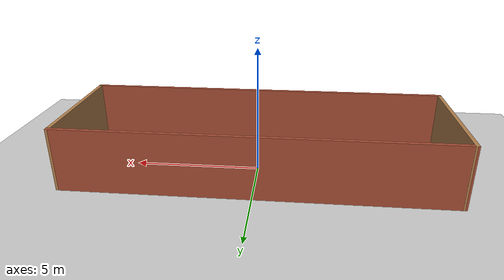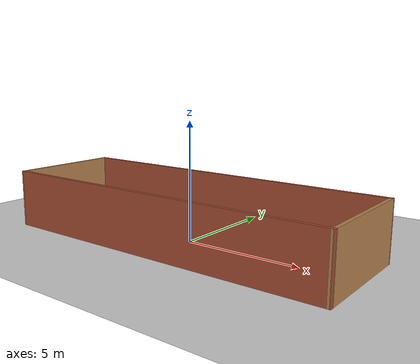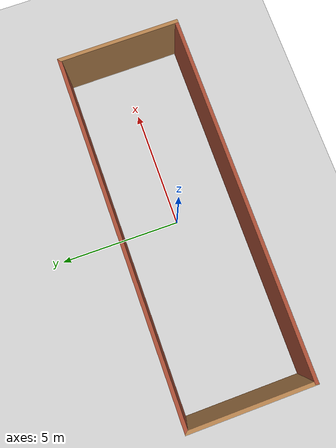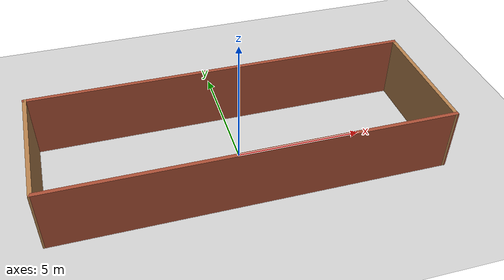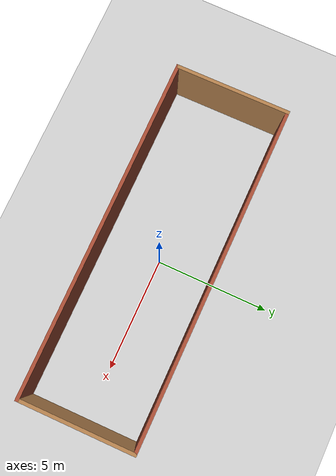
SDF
<sdf version="1.6">
 <world name="default">
  <model name="ground_plane">
   <static>1</static>
   <link name="link">
    <collision name="collision">
     <geometry><plane><normal>0 0 1</normal><size>100 100</size></plane></geometry>
     <surface>
      <contact><collide_bitmask>65535</collide_bitmask></contact>
      <friction><ode><mu>100</mu><mu2>50</mu2></ode></friction>
     </surface>
    </collision>
    <visual name="visual">
     <cast_shadows>0</cast_shadows>
     <geometry><plane><normal>0 0 1</normal><size>100 100</size></plane></geometry>
     <material>
      <script><uri>file://media/materials/scripts/gazebo.material</uri><name>Gazebo/Grey</name></script>
     </material>
    </visual>
   </link>
  </model>
  <gravity>0 0 -9.8</gravity>
  <magnetic_field>6e-06 2.3e-05 -4.2e-05</magnetic_field>
  <atmosphere type="adiabatic"/>
  <physics name="default_physics" default="0" type="ode">
   <max_step_size>0.001</max_step_size>
   <real_time_factor>1</real_time_factor>
   <real_time_update_rate>1000</real_time_update_rate>
  </physics>
  <scene><ambient>0.4 0.4 0.4 1</ambient><background>0.7 0.7 0.7 1</background><shadows>1</shadows></scene>
  <spherical_coordinates>
   <surface_model>EARTH_WGS84</surface_model>
   <latitude_deg>0</latitude_deg>
   <longitude_deg>0</longitude_deg>
   <elevation>0</elevation>
   <heading_deg>0</heading_deg>
  </spherical_coordinates>
  <model name="train_world">
   <pose>-0.075108 -0.108137 0 0 -0 0</pose>
   <link name="Wall_0">
    <collision name="Wall_0_Collision">
     <geometry><box><size>15 0.15 2.5</size></box></geometry>
     <pose>0 0 1.25 0 -0 0</pose>
    </collision>
    <visual name="Wall_0_Visual">
     <pose>0 0 1.25 0 -0 0</pose>
     <geometry><box><size>15 0.15 2.5</size></box></geometry>
     <material>
      <script><uri>file://media/materials/scripts/gazebo.material</uri><name>Gazebo/Bricks</name></script>
      <ambient>1 1 1 1</ambient>
     </material>
     <meta><layer>0</layer></meta>
    </visual>
    <pose>-0.020001 2.4655 0 0 -0 0</pose>
   </link>
   <link name="Wall_1">
    <collision name="Wall_1_Collision">
     <geometry><box><size>5.08152 0.15 2.5</size></box></geometry>
     <pose>0 0 1.25 0 -0 0</pose>
    </collision>
    <visual name="Wall_1_Visual">
     <pose>0 0 1.25 0 -0 0</pose>
     <geometry><box><size>5.08152 0.15 2.5</size></box></geometry>
     <material>
      <script><uri>file://media/materials/scripts/gazebo.material</uri><name>Gazebo/Wood</name></script>
      <ambient>1 1 1 1</ambient>
     </material>
     <meta><layer>0</layer></meta>
    </visual>
    <pose>7.425 0 0 0 0 -1.56269</pose>
   </link>
   <link name="Wall_4">
    <collision name="Wall_4_Collision">
     <geometry><box><size>15 0.15 2.5</size></box></geometry>
     <pose>0 0 1.25 0 -0 0</pose>
    </collision>
    <visual name="Wall_4_Visual">
     <pose>0 0 1.25 0 -0 0</pose>
     <geometry><box><size>15 0.15 2.5</size></box></geometry>
     <material>
      <script><uri>file://media/materials/scripts/gazebo.material</uri><name>Gazebo/Bricks</name></script>
      <ambient>1 1 1 1</ambient>
     </material>
     <meta><layer>0</layer></meta>
    </visual>
    <pose>0.019999 -2.4655 0 0 -0 3.14159</pose>
   </link>
   <link name="Wall_5">
    <collision name="Wall_5_Collision">
     <geometry><box><size>5.08108 0.15 2.5</size></box></geometry>
     <pose>0 0 1.25 0 -0 0</pose>
    </collision>
    <visual name="Wall_5_Visual">
     <pose>0 0 1.25 0 -0 0</pose>
     <geometry><box><size>5.08108 0.15 2.5</size></box></geometry>
     <material>
      <script><uri>file://media/materials/scripts/gazebo.material</uri><name>Gazebo/Wood</name></script>
      <ambient>1 1 1 1</ambient>
     </material>
     <meta><layer>0</layer></meta>
    </visual>
    <pose>-7.425 0 0 0 -0 1.57891</pose>
   </link>
   <static>1</static>
  </model>
  <light name="user_point_light_3" type="point">
   <pose>4.83303 1.46442 1 0 -0 0</pose>
   <diffuse>0.5 0.5 0.5 1</diffuse>
   <specular>0.1 0.1 0.1 1</specular>
   <attenuation>
    <range>20</range>
    <constant>0.5</constant>
    <linear>0.01</linear>
    <quadratic>0.001</quadratic>
   </attenuation>
   <cast_shadows>0</cast_shadows>
   <direction>0 0 -1</direction>
  </light>
  <light name="user_point_light_5" type="point">
   <pose>0.04095 2.02203 1 0 -0 0</pose>
   <diffuse>0.5 0.5 0.5 1</diffuse>
   <specular>0.1 0.1 0.1 1</specular>
   <attenuation>
    <range>20</range>
    <constant>0.5</constant>
    <linear>0.01</linear>
    <quadratic>0.001</quadratic>
   </attenuation>
   <cast_shadows>0</cast_shadows>
   <direction>0 0 -1</direction>
  </light>
  <light name="user_point_light_6" type="point">
   <pose>0.066797 -2.21655 1 0 -0 0</pose>
   <diffuse>0.5 0.5 0.5 1</diffuse>
   <specular>0.1 0.1 0.1 1</specular>
   <attenuation>
    <range>20</range>
    <constant>0.5</constant>
    <linear>0.01</linear>
    <quadratic>0.001</quadratic>
   </attenuation>
   <cast_shadows>0</cast_shadows>
   <direction>0 0 -1</direction>
  </light>
  <light name="user_point_light_8" type="point">
   <pose>-5.43827 0.031972 1 0 -0 0</pose>
   <diffuse>0.5 0.5 0.5 1</diffuse>
   <specular>0.1 0.1 0.1 1</specular>
   <attenuation>
    <range>20</range>
    <constant>0.5</constant>
    <linear>0.01</linear>
    <quadratic>0.001</quadratic>
   </attenuation>
   <cast_shadows>0</cast_shadows>
   <direction>0 0 -1</direction>
  </light>
 </world>
</sdf>
